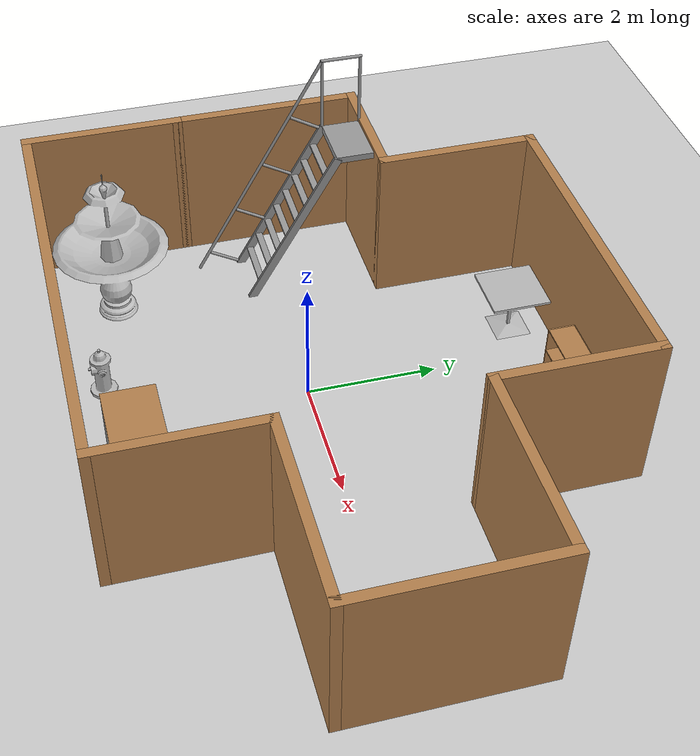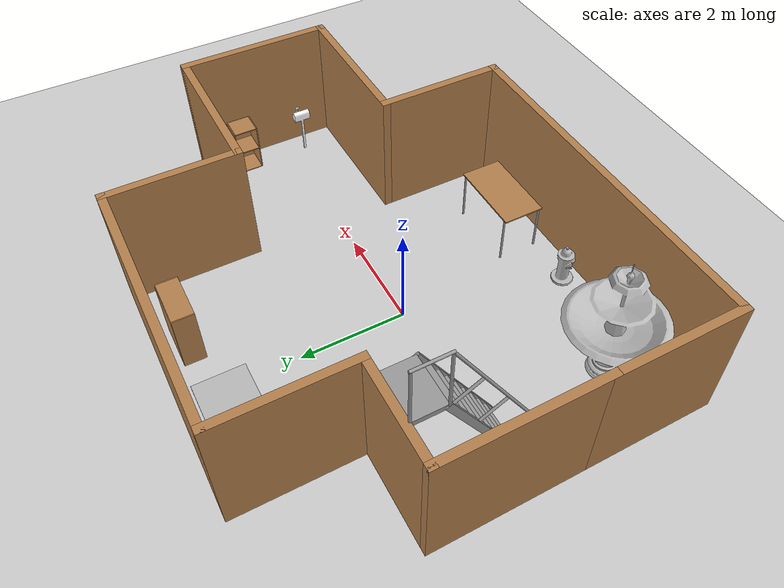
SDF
<sdf version="1.7">
 <world name="default">
  <light name="sun" type="directional">
   <pose>0 0 10 0 -0 0</pose>
   <diffuse>0.8 0.8 0.8 1</diffuse>
   <specular>0.2 0.2 0.2 1</specular>
   <attenuation>
    <range>1000</range>
    <constant>0.9</constant>
    <linear>0.01</linear>
    <quadratic>0.001</quadratic>
   </attenuation>
   <direction>-0.5 0.1 -0.9</direction>
   <spot><inner_angle>0</inner_angle><outer_angle>0</outer_angle><falloff>0</falloff></spot>
  </light>
  <model name="ground_plane">
   <static>1</static>
   <link name="link">
    <collision name="collision">
     <geometry><plane><normal>0 0 1</normal><size>100 100</size></plane></geometry>
     <surface><friction><ode><mu>100</mu><mu2>50</mu2></ode></friction></surface>
    </collision>
    <visual name="visual">
     <cast_shadows>0</cast_shadows>
     <geometry><plane><normal>0 0 1</normal><size>100 100</size></plane></geometry>
     <material>
      <script><uri>file://media/materials/scripts/gazebo.material</uri><name>Gazebo/Grey</name></script>
     </material>
    </visual>
   </link>
  </model>
  <gravity>0 0 -9.8</gravity>
  <magnetic_field>6e-06 2.3e-05 -4.2e-05</magnetic_field>
  <atmosphere type="adiabatic"/>
  <physics type="ode">
   <max_step_size>0.001</max_step_size>
   <real_time_factor>1</real_time_factor>
   <real_time_update_rate>1000</real_time_update_rate>
  </physics>
  <scene><ambient>0.4 0.4 0.4 1</ambient><background>0.7 0.7 0.7 1</background><shadows>1</shadows></scene>
  <spherical_coordinates>
   <surface_model>EARTH_WGS84</surface_model>
   <latitude_deg>0</latitude_deg>
   <longitude_deg>0</longitude_deg>
   <elevation>0</elevation>
   <heading_deg>0</heading_deg>
  </spherical_coordinates>
  <model name="testing">
   <model name="Mailbox">
    <link name="link">
     <collision name="collision">
      <geometry><mesh><uri>model://mailbox/meshes/mailbox.dae</uri></mesh></geometry>
     </collision>
     <visual name="visual">
      <geometry><mesh><uri>model://mailbox/meshes/mailbox.dae</uri></mesh></geometry>
      <material>
       <script>
        <uri>model://mailbox/materials/scripts</uri>
        <uri>model://mailbox/materials/textures</uri>
        <name>Mailbox/Diffuse</name>
       </script>
      </material>
     </visual>
     <inertial>
      <inertia><ixx>1</ixx><ixy>0</ixy><ixz>0</ixz><iyy>1</iyy><iyz>0</iyz><izz>1</izz></inertia>
      <mass>1</mass>
     </inertial>
    </link>
    <pose>4.38027 -0.299819 0 0 -0 0</pose>
   </model>
   <model name="bookshelf">
    <static>1</static>
    <link name="link">
     <inertial><mass>1</mass></inertial>
     <collision name="back">
      <pose>0 0.005 0.6 0 -0 0</pose>
      <geometry><box><size>0.9 0.01 1.2</size></box></geometry>
     </collision>
     <visual name="visual1">
      <pose>0 0.005 0.6 0 -0 0</pose>
      <geometry><box><size>0.9 0.01 1.2</size></box></geometry>
      <material>
       <script><uri>file://media/materials/scripts/gazebo.material</uri><name>Gazebo/Wood</name></script>
      </material>
     </visual>
     <collision name="left_side">
      <pose>0.45 -0.195 0.6 0 -0 0</pose>
      <geometry><box><size>0.02 0.4 1.2</size></box></geometry>
     </collision>
     <visual name="visual2">
      <pose>0.45 -0.195 0.6 0 -0 0</pose>
      <geometry><box><size>0.02 0.4 1.2</size></box></geometry>
      <material>
       <script><uri>file://media/materials/scripts/gazebo.material</uri><name>Gazebo/Wood</name></script>
      </material>
     </visual>
     <collision name="right_side">
      <pose>-0.45 -0.195 0.6 0 -0 0</pose>
      <geometry><box><size>0.02 0.4 1.2</size></box></geometry>
     </collision>
     <visual name="visual3">
      <pose>-0.45 -0.195 0.6 0 -0 0</pose>
      <geometry><box><size>0.02 0.4 1.2</size></box></geometry>
      <material>
       <script><uri>file://media/materials/scripts/gazebo.material</uri><name>Gazebo/Wood</name></script>
      </material>
     </visual>
     <collision name="bottom">
      <pose>0 -0.195 0.03 0 -0 0</pose>
      <geometry><box><size>0.88 0.4 0.06</size></box></geometry>
     </collision>
     <visual name="visual4">
      <pose>0 -0.195 0.03 0 -0 0</pose>
      <geometry><box><size>0.88 0.4 0.06</size></box></geometry>
      <material>
       <script><uri>file://media/materials/scripts/gazebo.material</uri><name>Gazebo/Wood</name></script>
      </material>
     </visual>
     <collision name="top">
      <pose>0 -0.195 1.19 0 -0 0</pose>
      <geometry><box><size>0.88 0.4 0.02</size></box></geometry>
     </collision>
     <visual name="visual5">
      <pose>0 -0.195 1.19 0 -0 0</pose>
      <geometry><box><size>0.88 0.4 0.02</size></box></geometry>
      <material>
       <script><uri>file://media/materials/scripts/gazebo.material</uri><name>Gazebo/Wood</name></script>
      </material>
     </visual>
     <collision name="low_shelf">
      <pose>0 -0.195 0.43 0 -0 0</pose>
      <geometry><box><size>0.88 0.4 0.02</size></box></geometry>
     </collision>
     <visual name="visual6">
      <pose>0 -0.195 0.43 0 -0 0</pose>
      <geometry><box><size>0.88 0.4 0.02</size></box></geometry>
      <material>
       <script><uri>file://media/materials/scripts/gazebo.material</uri><name>Gazebo/Wood</name></script>
      </material>
     </visual>
     <collision name="high_shelf">
      <pose>0 -0.195 0.8 0 -0 0</pose>
      <geometry><box><size>0.88 0.4 0.02</size></box></geometry>
     </collision>
     <visual name="visual7">
      <pose>0 -0.195 0.8 0 -0 0</pose>
      <geometry><box><size>0.88 0.4 0.02</size></box></geometry>
      <material>
       <script><uri>file://media/materials/scripts/gazebo.material</uri><name>Gazebo/Wood</name></script>
      </material>
     </visual>
    </link>
    <pose>0.518868 3.83058 0 0 -0 0</pose>
   </model>
   <model name="cabinet">
    <static>1</static>
    <link name="cabinet_bottom_plate">
     <inertial>
      <pose>0 0 -1 0 -0 0</pose>
      <inertia><ixx>2.05</ixx><ixy>0</ixy><ixz>0</ixz><iyy>2.05</iyy><iyz>0</iyz><izz>2.05</izz></inertia>
      <mass>25</mass>
     </inertial>
     <collision name="cabinet_bottom_plate_geom">
      <pose>0 0 0.01 0 -0 0</pose>
      <geometry><box><size>0.45 0.45 0.02</size></box></geometry>
     </collision>
     <visual name="cabinet_bottom_plate_geom_visual">
      <pose>0 0 0.01 0 -0 0</pose>
      <geometry><box><size>0.45 0.45 0.02</size></box></geometry>
      <material>
       <script><uri>file://media/materials/scripts/gazebo.material</uri><name>Gazebo/Wood</name></script>
      </material>
     </visual>
     <collision name="cabinet_bottom_plate_geom_cabinet_back_plate">
      <pose>0.235 0 0.51 0 -0 0</pose>
      <geometry><box><size>0.02 0.45 1.02</size></box></geometry>
     </collision>
     <visual name="cabinet_bottom_plate_geom_cabinet_back_plate_visual">
      <pose>0.235 0 0.51 0 -0 0</pose>
      <geometry><box><size>0.02 0.45 1.02</size></box></geometry>
      <material>
       <script><uri>file://media/materials/scripts/gazebo.material</uri><name>Gazebo/Wood</name></script>
      </material>
     </visual>
     <collision name="cabinet_bottom_plate_geom_cabinet_left_plate">
      <pose>0 0.235 0.51 0 -0 0</pose>
      <geometry><box><size>0.45 0.02 1.02</size></box></geometry>
     </collision>
     <visual name="cabinet_bottom_plate_geom_cabinet_left_plate_visual">
      <pose>0 0.235 0.51 0 -0 0</pose>
      <geometry><box><size>0.45 0.02 1.02</size></box></geometry>
      <material>
       <script><uri>file://media/materials/scripts/gazebo.material</uri><name>Gazebo/Wood</name></script>
      </material>
     </visual>
     <collision name="cabinet_bottom_plate_geom_cabinet_middle_plate">
      <pose>0 0 0.51 0 -0 0</pose>
      <geometry><box><size>0.45 0.45 0.02</size></box></geometry>
     </collision>
     <visual name="cabinet_bottom_plate_geom_cabinet_middle_plate_visual">
      <pose>0 0 0.51 0 -0 0</pose>
      <geometry><box><size>0.45 0.45 0.02</size></box></geometry>
      <material>
       <script><uri>file://media/materials/scripts/gazebo.material</uri><name>Gazebo/Wood</name></script>
      </material>
     </visual>
     <collision name="cabinet_bottom_plate_geom_cabinet_right_plate">
      <pose>0 -0.235 0.51 0 -0 0</pose>
      <geometry><box><size>0.45 0.02 1.02</size></box></geometry>
     </collision>
     <visual name="cabinet_bottom_plate_geom_cabinet_right_plate_visual">
      <pose>0 -0.235 0.51 0 -0 0</pose>
      <geometry><box><size>0.45 0.02 1.02</size></box></geometry>
      <material>
       <script><uri>file://media/materials/scripts/gazebo.material</uri><name>Gazebo/Wood</name></script>
      </material>
     </visual>
     <collision name="cabinet_bottom_plate_geom_cabinet_top_plate">
      <pose>0 0 1.01 0 -0 0</pose>
      <geometry><box><size>0.45 0.45 0.02</size></box></geometry>
     </collision>
     <visual name="cabinet_bottom_plate_geom_cabinet_top_plate_visual">
      <pose>0 0 1.01 0 -0 0</pose>
      <geometry><box><size>0.45 0.45 0.02</size></box></geometry>
      <material>
       <script><uri>file://media/materials/scripts/gazebo.material</uri><name>Gazebo/Wood</name></script>
      </material>
     </visual>
    </link>
    <pose>4.46571 0.984738 0 0 -0 0</pose>
   </model>
   <model name="cafe_table">
    <static>1</static>
    <link name="link">
     <collision name="surface">
      <pose>0 0 0.755 0 -0 0</pose>
      <geometry><box><size>0.913 0.913 0.04</size></box></geometry>
     </collision>
     <collision name="column">
      <pose>0 0 0.37 0 -0 0</pose>
      <geometry><box><size>0.042 0.042 0.74</size></box></geometry>
     </collision>
     <collision name="base">
      <pose>0 0 0.02 0 -0 0</pose>
      <geometry><box><size>0.56 0.56 0.04</size></box></geometry>
     </collision>
     <visual name="visual">
      <geometry><mesh><uri>model://cafe_table/meshes/cafe_table.dae</uri></mesh></geometry>
     </visual>
    </link>
    <pose>-1.39263 3.46485 0 0 -0 0</pose>
   </model>
   <model name="fire_hydrant">
    <static>1</static>
    <link name="link">
     <collision name="collision">
      <geometry><mesh><uri>model://fire_hydrant/meshes/fire_hydrant.dae</uri></mesh></geometry>
     </collision>
     <visual name="visual">
      <geometry><mesh><uri>model://fire_hydrant/meshes/fire_hydrant.dae</uri></mesh></geometry>
     </visual>
    </link>
    <pose>-1.43908 -2.93566 0 0 -0 0</pose>
   </model>
   <model name="fountain">
    <static>1</static>
    <link name="link">
     <collision name="collision">
      <geometry><mesh><uri>model://fountain/meshes/fountain.dae</uri></mesh></geometry>
     </collision>
     <visual name="visual">
      <geometry><mesh><uri>model://fountain/meshes/fountain.dae</uri></mesh></geometry>
     </visual>
    </link>
    <pose>-3.35008 -2.44479 0 0 -0 0</pose>
   </model>
   <model name="ladder_60deg_1rails">
    <static>1</static>
    <link name="step0">
     <pose>0 0.15396 0.266667 0 -0 0</pose>
     <inertial>
      <mass>9.75482</mass>
      <inertia>
       <ixx>0.00957124</ixx>
       <iyy>0.65963</iyy>
       <izz>0.666842</izz>
       <ixy>0</ixy>
       <ixz>0</ixz>
       <iyz>0</iyz>
      </inertia>
     </inertial>
     <collision name="collision"><geometry><box><size>0.9 0.1016 0.0381</size></box></geometry></collision>
     <visual name="visual">
      <geometry><box><size>0.9 0.1016 0.0381</size></box></geometry>
      <material>
       <script><uri>file://media/materials/scripts/gazebo.material</uri><name>Gazebo/Grey</name></script>
      </material>
     </visual>
    </link>
    <link name="step1">
     <pose>0 0.30792 0.533333 0 -0 0</pose>
     <inertial>
      <mass>9.75482</mass>
      <inertia>
       <ixx>0.00957124</ixx>
       <iyy>0.65963</iyy>
       <izz>0.666842</izz>
       <ixy>0</ixy>
       <ixz>0</ixz>
       <iyz>0</iyz>
      </inertia>
     </inertial>
     <collision name="collision"><geometry><box><size>0.9 0.1016 0.0381</size></box></geometry></collision>
     <visual name="visual">
      <geometry><box><size>0.9 0.1016 0.0381</size></box></geometry>
      <material>
       <script><uri>file://media/materials/scripts/gazebo.material</uri><name>Gazebo/Grey</name></script>
      </material>
     </visual>
    </link>
    <link name="step2">
     <pose>0 0.46188 0.8 0 -0 0</pose>
     <inertial>
      <mass>9.75482</mass>
      <inertia>
       <ixx>0.00957124</ixx>
       <iyy>0.65963</iyy>
       <izz>0.666842</izz>
       <ixy>0</ixy>
       <ixz>0</ixz>
       <iyz>0</iyz>
      </inertia>
     </inertial>
     <collision name="collision"><geometry><box><size>0.9 0.1016 0.0381</size></box></geometry></collision>
     <visual name="visual">
      <geometry><box><size>0.9 0.1016 0.0381</size></box></geometry>
      <material>
       <script><uri>file://media/materials/scripts/gazebo.material</uri><name>Gazebo/Grey</name></script>
      </material>
     </visual>
    </link>
    <link name="step3">
     <pose>0 0.61584 1.06667 0 -0 0</pose>
     <inertial>
      <mass>9.75482</mass>
      <inertia>
       <ixx>0.00957124</ixx>
       <iyy>0.65963</iyy>
       <izz>0.666842</izz>
       <ixy>0</ixy>
       <ixz>0</ixz>
       <iyz>0</iyz>
      </inertia>
     </inertial>
     <collision name="collision"><geometry><box><size>0.9 0.1016 0.0381</size></box></geometry></collision>
     <visual name="visual">
      <geometry><box><size>0.9 0.1016 0.0381</size></box></geometry>
      <material>
       <script><uri>file://media/materials/scripts/gazebo.material</uri><name>Gazebo/Grey</name></script>
      </material>
     </visual>
    </link>
    <link name="step4">
     <pose>0 0.7698 1.33333 0 -0 0</pose>
     <inertial>
      <mass>9.75482</mass>
      <inertia>
       <ixx>0.00957124</ixx>
       <iyy>0.65963</iyy>
       <izz>0.666842</izz>
       <ixy>0</ixy>
       <ixz>0</ixz>
       <iyz>0</iyz>
      </inertia>
     </inertial>
     <collision name="collision"><geometry><box><size>0.9 0.1016 0.0381</size></box></geometry></collision>
     <visual name="visual">
      <geometry><box><size>0.9 0.1016 0.0381</size></box></geometry>
      <material>
       <script><uri>file://media/materials/scripts/gazebo.material</uri><name>Gazebo/Grey</name></script>
      </material>
     </visual>
    </link>
    <link name="step5">
     <pose>0 0.92376 1.6 0 -0 0</pose>
     <inertial>
      <mass>9.75482</mass>
      <inertia>
       <ixx>0.00957124</ixx>
       <iyy>0.65963</iyy>
       <izz>0.666842</izz>
       <ixy>0</ixy>
       <ixz>0</ixz>
       <iyz>0</iyz>
      </inertia>
     </inertial>
     <collision name="collision"><geometry><box><size>0.9 0.1016 0.0381</size></box></geometry></collision>
     <visual name="visual">
      <geometry><box><size>0.9 0.1016 0.0381</size></box></geometry>
      <material>
       <script><uri>file://media/materials/scripts/gazebo.material</uri><name>Gazebo/Grey</name></script>
      </material>
     </visual>
    </link>
    <link name="step6">
     <pose>0 1.07772 1.86667 0 -0 0</pose>
     <inertial>
      <mass>9.75482</mass>
      <inertia>
       <ixx>0.00957124</ixx>
       <iyy>0.65963</iyy>
       <izz>0.666842</izz>
       <ixy>0</ixy>
       <ixz>0</ixz>
       <iyz>0</iyz>
      </inertia>
     </inertial>
     <collision name="collision"><geometry><box><size>0.9 0.1016 0.0381</size></box></geometry></collision>
     <visual name="visual">
      <geometry><box><size>0.9 0.1016 0.0381</size></box></geometry>
      <material>
       <script><uri>file://media/materials/scripts/gazebo.material</uri><name>Gazebo/Grey</name></script>
      </material>
     </visual>
    </link>
    <link name="step7">
     <pose>0 1.23168 2.13333 0 -0 0</pose>
     <inertial>
      <mass>9.75482</mass>
      <inertia>
       <ixx>0.00957124</ixx>
       <iyy>0.65963</iyy>
       <izz>0.666842</izz>
       <ixy>0</ixy>
       <ixz>0</ixz>
       <iyz>0</iyz>
      </inertia>
     </inertial>
     <collision name="collision"><geometry><box><size>0.9 0.1016 0.0381</size></box></geometry></collision>
     <visual name="visual">
      <geometry><box><size>0.9 0.1016 0.0381</size></box></geometry>
      <material>
       <script><uri>file://media/materials/scripts/gazebo.material</uri><name>Gazebo/Grey</name></script>
      </material>
     </visual>
    </link>
    <link name="landing">
     <pose>0 1.68564 2.4 0 -0 0</pose>
     <inertial>
      <mass>57.6072</mass>
      <inertia><ixx>1.73518</ixx><iyy>3.89545</iyy><izz>5.6167</izz><ixy>0</ixy><ixz>0</ixz><iyz>0</iyz></inertia>
     </inertial>
     <collision name="collision"><geometry><box><size>0.9 0.6 0.1016</size></box></geometry></collision>
     <visual name="visual">
      <geometry><box><size>0.9 0.6 0.1016</size></box></geometry>
      <material>
       <script><uri>file://media/materials/scripts/gazebo.material</uri><name>Gazebo/Grey</name></script>
      </material>
     </visual>
    </link>
    <link name="left_side_wall">
     <pose>-0.45 0.69282 1.2 1.0472 -0 0</pose>
     <collision name="collision"><geometry><box><size>0.0508 2.85128 0.13</size></box></geometry></collision>
     <visual name="visual">
      <geometry><box><size>0.0508 2.85128 0.13</size></box></geometry>
      <material>
       <script><uri>file://media/materials/scripts/gazebo.material</uri><name>Gazebo/Grey</name></script>
      </material>
     </visual>
    </link>
    <link name="right_side_wall">
     <pose>0.45 0.69282 1.2 1.0472 -0 0</pose>
     <collision name="collision"><geometry><box><size>0.0508 2.85128 0.13</size></box></geometry></collision>
     <visual name="visual">
      <geometry><box><size>0.0508 2.85128 0.13</size></box></geometry>
      <material>
       <script><uri>file://media/materials/scripts/gazebo.material</uri><name>Gazebo/Grey</name></script>
      </material>
     </visual>
    </link>
    <link name="left_railing_long">
     <pose>-0.45 0.34282 1.80622 -0.523599 0 0</pose>
     <collision name="collision">
      <geometry><cylinder><radius>0.02413</radius><length>4.17128</length></cylinder></geometry>
     </collision>
     <visual name="visual">
      <geometry><cylinder><radius>0.02413</radius><length>4.17128</length></cylinder></geometry>
      <material>
       <script><uri>file://media/materials/scripts/gazebo.material</uri><name>Gazebo/Grey</name></script>
      </material>
     </visual>
    </link>
    <link name="left_railing_upright0">
     <pose>-0.45 -0.274963 0.15875 1.0472 -0 0</pose>
     <collision name="collision">
      <geometry><cylinder><radius>0.02413</radius><length>0.541218</length></cylinder></geometry>
     </collision>
     <visual name="visual">
      <geometry><cylinder><radius>0.02413</radius><length>0.541218</length></cylinder></geometry>
      <material>
       <script><uri>file://media/materials/scripts/gazebo.material</uri><name>Gazebo/Grey</name></script>
      </material>
     </visual>
    </link>
    <link name="left_railing_upright1">
     <pose>-0.45 0.186917 0.95875 1.0472 -0 0</pose>
     <collision name="collision">
      <geometry><cylinder><radius>0.02413</radius><length>0.541218</length></cylinder></geometry>
     </collision>
     <visual name="visual">
      <geometry><cylinder><radius>0.02413</radius><length>0.541218</length></cylinder></geometry>
      <material>
       <script><uri>file://media/materials/scripts/gazebo.material</uri><name>Gazebo/Grey</name></script>
      </material>
     </visual>
    </link>
    <link name="left_railing_upright2">
     <pose>-0.45 0.648797 1.75875 1.0472 -0 0</pose>
     <collision name="collision">
      <geometry><cylinder><radius>0.02413</radius><length>0.541218</length></cylinder></geometry>
     </collision>
     <visual name="visual">
      <geometry><cylinder><radius>0.02413</radius><length>0.541218</length></cylinder></geometry>
      <material>
       <script><uri>file://media/materials/scripts/gazebo.material</uri><name>Gazebo/Grey</name></script>
      </material>
     </visual>
    </link>
    <link name="left_railing_upright3">
     <pose>-0.45 1.11068 2.55875 1.0472 -0 0</pose>
     <collision name="collision">
      <geometry><cylinder><radius>0.02413</radius><length>0.541218</length></cylinder></geometry>
     </collision>
     <visual name="visual">
      <geometry><cylinder><radius>0.02413</radius><length>0.541218</length></cylinder></geometry>
      <material>
       <script><uri>file://media/materials/scripts/gazebo.material</uri><name>Gazebo/Grey</name></script>
      </material>
     </visual>
    </link>
    <link name="left_railing_landing_top">
     <pose>-0.45 1.68564 3.61244 1.5708 -0 0</pose>
     <collision name="collision">
      <geometry><cylinder><radius>0.02413</radius><length>0.64826</length></cylinder></geometry>
     </collision>
     <visual name="visual">
      <geometry><cylinder><radius>0.02413</radius><length>0.64826</length></cylinder></geometry>
      <material>
       <script><uri>file://media/materials/scripts/gazebo.material</uri><name>Gazebo/Grey</name></script>
      </material>
     </visual>
    </link>
    <link name="left_railing_landing_upright_0">
     <pose>-0.45 1.38564 3.00622 0 -0 0</pose>
     <collision name="collision">
      <geometry><cylinder><radius>0.02413</radius><length>1.21244</length></cylinder></geometry>
     </collision>
     <visual name="visual">
      <geometry><cylinder><radius>0.02413</radius><length>1.21244</length></cylinder></geometry>
      <material>
       <script><uri>file://media/materials/scripts/gazebo.material</uri><name>Gazebo/Grey</name></script>
      </material>
     </visual>
    </link>
    <link name="left_railing_landing_upright_1">
     <pose>-0.45 1.98564 3.00622 0 -0 0</pose>
     <collision name="collision">
      <geometry><cylinder><radius>0.02413</radius><length>1.21244</length></cylinder></geometry>
     </collision>
     <visual name="visual">
      <geometry><cylinder><radius>0.02413</radius><length>1.21244</length></cylinder></geometry>
      <material>
       <script><uri>file://media/materials/scripts/gazebo.material</uri><name>Gazebo/Grey</name></script>
      </material>
     </visual>
    </link>
    <pose>-3.57054 -0.282394 0 0 -0 0</pose>
   </model>
   <model name="table">
    <static>1</static>
    <link name="link">
     <collision name="surface">
      <pose>0 0 1 0 -0 0</pose>
      <geometry><box><size>1.5 0.8 0.03</size></box></geometry>
      <surface><friction><ode><mu>0.6</mu><mu2>0.6</mu2></ode></friction></surface>
     </collision>
     <visual name="visual1">
      <pose>0 0 1 0 -0 0</pose>
      <geometry><box><size>1.5 0.8 0.03</size></box></geometry>
      <material>
       <script><uri>file://media/materials/scripts/gazebo.material</uri><name>Gazebo/Wood</name></script>
      </material>
     </visual>
     <collision name="front_left_leg">
      <pose>0.68 0.38 0.5 0 -0 0</pose>
      <geometry><cylinder><radius>0.02</radius><length>1</length></cylinder></geometry>
     </collision>
     <visual name="front_left_leg">
      <pose>0.68 0.38 0.5 0 -0 0</pose>
      <geometry><cylinder><radius>0.02</radius><length>1</length></cylinder></geometry>
      <material>
       <script><uri>file://media/materials/scripts/gazebo.material</uri><name>Gazebo/Grey</name></script>
      </material>
     </visual>
     <collision name="front_right_leg">
      <pose>0.68 -0.38 0.5 0 -0 0</pose>
      <geometry><cylinder><radius>0.02</radius><length>1</length></cylinder></geometry>
     </collision>
     <visual name="front_right_leg">
      <pose>0.68 -0.38 0.5 0 -0 0</pose>
      <geometry><cylinder><radius>0.02</radius><length>1</length></cylinder></geometry>
      <material>
       <script><uri>file://media/materials/scripts/gazebo.material</uri><name>Gazebo/Grey</name></script>
      </material>
     </visual>
     <collision name="back_right_leg">
      <pose>-0.68 -0.38 0.5 0 -0 0</pose>
      <geometry><cylinder><radius>0.02</radius><length>1</length></cylinder></geometry>
     </collision>
     <visual name="back_right_leg">
      <pose>-0.68 -0.38 0.5 0 -0 0</pose>
      <geometry><cylinder><radius>0.02</radius><length>1</length></cylinder></geometry>
      <material>
       <script><uri>file://media/materials/scripts/gazebo.material</uri><name>Gazebo/Grey</name></script>
      </material>
     </visual>
     <collision name="back_left_leg">
      <pose>-0.68 0.38 0.5 0 -0 0</pose>
      <geometry><cylinder><radius>0.02</radius><length>1</length></cylinder></geometry>
     </collision>
     <visual name="back_left_leg">
      <pose>-0.68 0.38 0.5 0 -0 0</pose>
      <geometry><cylinder><radius>0.02</radius><length>1</length></cylinder></geometry>
      <material>
       <script><uri>file://media/materials/scripts/gazebo.material</uri><name>Gazebo/Grey</name></script>
      </material>
     </visual>
    </link>
    <pose>0.298115 -2.65914 0 0 -0 0</pose>
   </model>
   <model name="world_2">
    <pose>0.089363 0.341661 0 0 -0 0</pose>
    <link name="Wall_0">
     <collision name="Wall_0_Collision">
      <geometry><box><size>3 0.15 2.5</size></box></geometry>
      <pose>0 0 1.25 0 -0 0</pose>
     </collision>
     <visual name="Wall_0_Visual">
      <pose>0 0 1.25 0 -0 0</pose>
      <geometry><box><size>3 0.15 2.5</size></box></geometry>
      <material>
       <script><uri>file://media/materials/scripts/gazebo.material</uri><name>Gazebo/Wood</name></script>
       <ambient>1 1 1 1</ambient>
      </material>
      <meta><layer>0</layer></meta>
     </visual>
     <pose>-4.775 0 0 0 -0 1.5708</pose>
    </link>
    <link name="Wall_1">
     <collision name="Wall_1_Collision">
      <geometry><box><size>2 0.15 2.5</size></box></geometry>
      <pose>0 0 1.25 0 -0 0</pose>
     </collision>
     <visual name="Wall_1_Visual">
      <pose>0 0 1.25 0 -0 0</pose>
      <geometry><box><size>2 0.15 2.5</size></box></geometry>
      <material>
       <script><uri>file://media/materials/scripts/gazebo.material</uri><name>Gazebo/Wood</name></script>
       <ambient>1 1 1 1</ambient>
      </material>
      <meta><layer>0</layer></meta>
     </visual>
     <pose>-3.85 1.425 0 0 -0 0</pose>
    </link>
    <link name="Wall_10">
     <collision name="Wall_10_Collision">
      <geometry><box><size>6.75 0.15 2.5</size></box></geometry>
      <pose>0 0 1.25 0 -0 0</pose>
     </collision>
     <visual name="Wall_10_Visual">
      <pose>0 0 1.25 0 -0 0</pose>
      <geometry><box><size>6.75 0.15 2.5</size></box></geometry>
      <material>
       <script><uri>file://media/materials/scripts/gazebo.material</uri><name>Gazebo/Wood</name></script>
       <ambient>1 1 1 1</ambient>
      </material>
      <meta><layer>0</layer></meta>
     </visual>
     <pose>-1.375 -3.775 0 0 -0 3.14159</pose>
    </link>
    <link name="Wall_12">
     <collision name="Wall_12_Collision">
      <geometry><box><size>2.5 0.15 2.5</size></box></geometry>
      <pose>0 0 1.25 0 -0 0</pose>
     </collision>
     <visual name="Wall_12_Visual">
      <pose>0 0 1.25 0 -0 0</pose>
      <geometry><box><size>2.5 0.15 2.5</size></box></geometry>
      <material>
       <script><uri>file://media/materials/scripts/gazebo.material</uri><name>Gazebo/Wood</name></script>
       <ambient>1 1 1 1</ambient>
      </material>
      <meta><layer>0</layer></meta>
     </visual>
     <pose>-4.775 -2.6 0 0 -0 -1.5708</pose>
    </link>
    <link name="Wall_2">
     <collision name="Wall_2_Collision">
      <geometry><box><size>2.5 0.15 2.5</size></box></geometry>
      <pose>0 0 1.25 0 -0 0</pose>
     </collision>
     <visual name="Wall_2_Visual">
      <pose>0 0 1.25 0 -0 0</pose>
      <geometry><box><size>2.5 0.15 2.5</size></box></geometry>
      <material>
       <script><uri>file://media/materials/scripts/gazebo.material</uri><name>Gazebo/Wood</name></script>
       <ambient>1 1 1 1</ambient>
      </material>
      <meta><layer>0</layer></meta>
     </visual>
     <pose>-2.925 2.6 0 0 -0 1.5708</pose>
    </link>
    <link name="Wall_3">
     <collision name="Wall_3_Collision">
      <geometry><box><size>5 0.15 2.5</size></box></geometry>
      <pose>0 0 1.25 0 -0 0</pose>
     </collision>
     <visual name="Wall_3_Visual">
      <pose>0 0 1.25 0 -0 0</pose>
      <geometry><box><size>5 0.15 2.5</size></box></geometry>
      <material>
       <script><uri>file://media/materials/scripts/gazebo.material</uri><name>Gazebo/Wood</name></script>
       <ambient>1 1 1 1</ambient>
      </material>
      <meta><layer>0</layer></meta>
     </visual>
     <pose>-0.5 3.775 0 0 -0 0</pose>
    </link>
    <link name="Wall_4">
     <collision name="Wall_4_Collision">
      <geometry><box><size>2.5 0.15 2.5</size></box></geometry>
      <pose>0 0 1.25 0 -0 0</pose>
     </collision>
     <visual name="Wall_4_Visual">
      <pose>0 0 1.25 0 -0 0</pose>
      <geometry><box><size>2.5 0.15 2.5</size></box></geometry>
      <material>
       <script><uri>file://media/materials/scripts/gazebo.material</uri><name>Gazebo/Wood</name></script>
       <ambient>1 1 1 1</ambient>
      </material>
      <meta><layer>0</layer></meta>
     </visual>
     <pose>1.925 2.6 0 0 -0 -1.5708</pose>
    </link>
    <link name="Wall_5">
     <collision name="Wall_5_Collision">
      <geometry><box><size>3 0.15 2.5</size></box></geometry>
      <pose>0 0 1.25 0 -0 0</pose>
     </collision>
     <visual name="Wall_5_Visual">
      <pose>0 0 1.25 0 -0 0</pose>
      <geometry><box><size>3 0.15 2.5</size></box></geometry>
      <material>
       <script><uri>file://media/materials/scripts/gazebo.material</uri><name>Gazebo/Wood</name></script>
       <ambient>1 1 1 1</ambient>
      </material>
      <meta><layer>0</layer></meta>
     </visual>
     <pose>3.35 1.425 0 0 -0 0</pose>
    </link>
    <link name="Wall_6">
     <collision name="Wall_6_Collision">
      <geometry><box><size>3 0.15 2.5</size></box></geometry>
      <pose>0 0 1.25 0 -0 0</pose>
     </collision>
     <visual name="Wall_6_Visual">
      <pose>0 0 1.25 0 -0 0</pose>
      <geometry><box><size>3 0.15 2.5</size></box></geometry>
      <material>
       <script><uri>file://media/materials/scripts/gazebo.material</uri><name>Gazebo/Wood</name></script>
       <ambient>1 1 1 1</ambient>
      </material>
      <meta><layer>0</layer></meta>
     </visual>
     <pose>4.775 0 0 0 -0 -1.5708</pose>
    </link>
    <link name="Wall_8">
     <collision name="Wall_8_Collision">
      <geometry><box><size>3 0.15 2.5</size></box></geometry>
      <pose>0 0 1.25 0 -0 0</pose>
     </collision>
     <visual name="Wall_8_Visual">
      <pose>0 0 1.25 0 -0 0</pose>
      <geometry><box><size>3 0.15 2.5</size></box></geometry>
      <material>
       <script><uri>file://media/materials/scripts/gazebo.material</uri><name>Gazebo/Wood</name></script>
       <ambient>1 1 1 1</ambient>
      </material>
      <meta><layer>0</layer></meta>
     </visual>
     <pose>3.35 -1.425 0 0 -0 3.14159</pose>
    </link>
    <link name="Wall_9">
     <collision name="Wall_9_Collision">
      <geometry><box><size>2.5 0.15 2.5</size></box></geometry>
      <pose>0 0 1.25 0 -0 0</pose>
     </collision>
     <visual name="Wall_9_Visual">
      <pose>0 0 1.25 0 -0 0</pose>
      <geometry><box><size>2.5 0.15 2.5</size></box></geometry>
      <material>
       <script><uri>file://media/materials/scripts/gazebo.material</uri><name>Gazebo/Wood</name></script>
       <ambient>1 1 1 1</ambient>
      </material>
      <meta><layer>0</layer></meta>
     </visual>
     <pose>1.925 -2.6 0 0 -0 -1.5708</pose>
    </link>
    <static>1</static>
   </model>
   <static>0</static>
   <pose>0.727268 -0.02476 -1e-05 -1e-06 -2e-06 0</pose>
  </model>
 </world>
</sdf>
